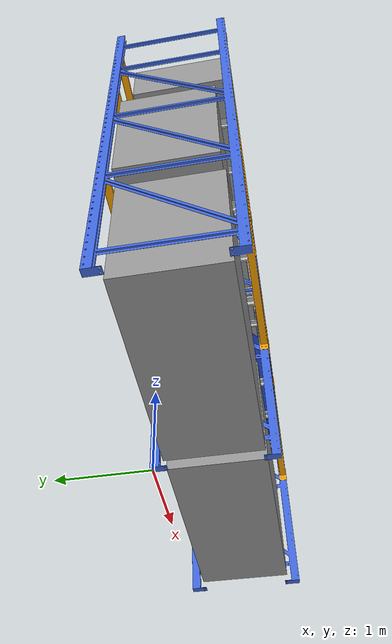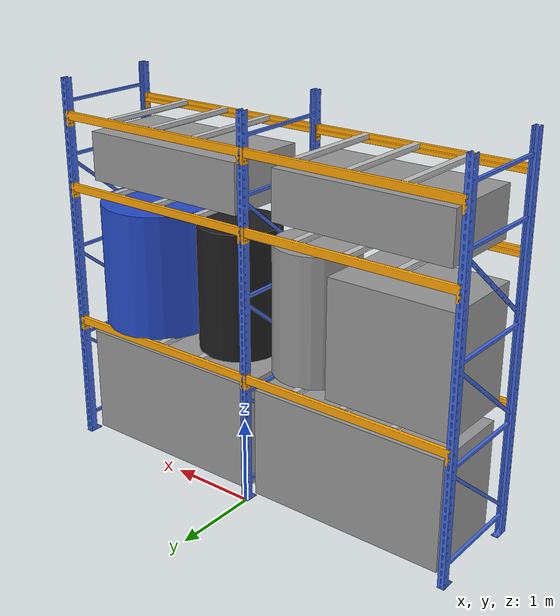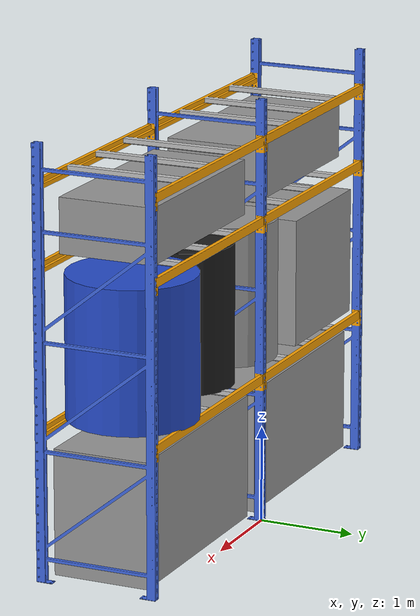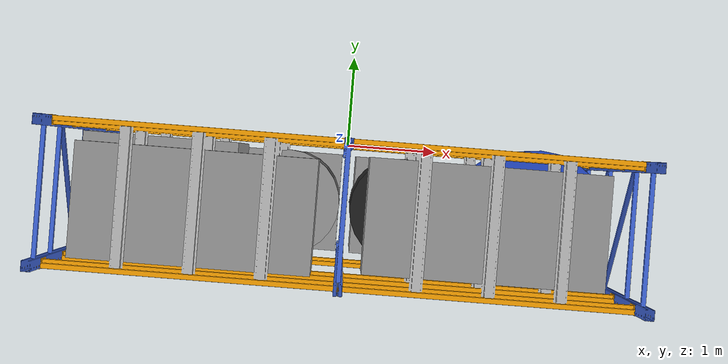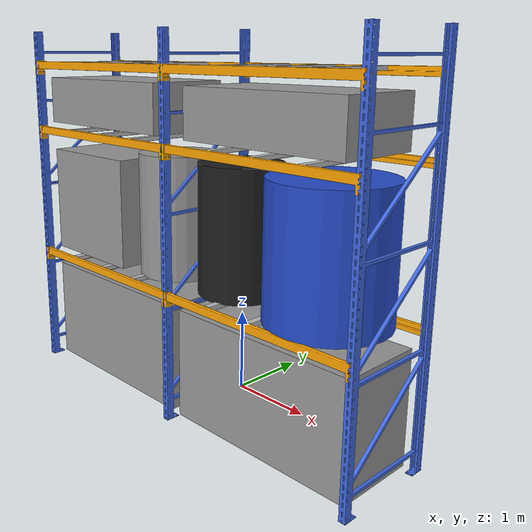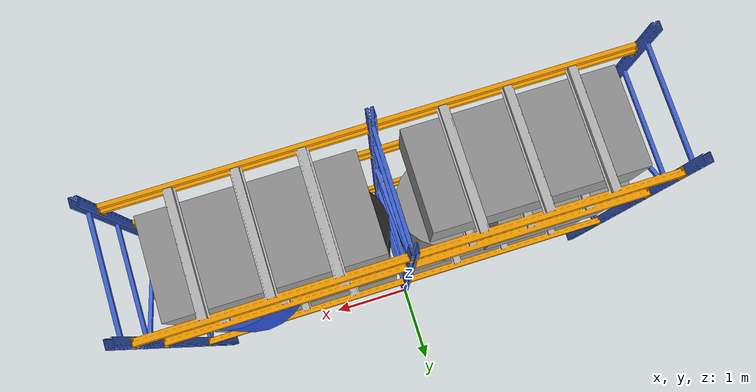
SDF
<?xml version='1.0'?>
<sdf version='1.6'>
  <model name='Full_shelf'>
    <link name='link'>
      <pose frame=''>0 0 0 0 -0 0</pose>
      <self_collide>0</self_collide>
      <kinematic>0</kinematic>
      <gravity>0</gravity>
      <inertial>
        <mass>1</mass>
        <pose frame=''>0 0 0 0 -0 0</pose>
        <inertia>
          <ixx>1</ixx>
          <ixy>0</ixy>
          <ixz>0</ixz>
          <iyy>1</iyy>
          <iyz>0</iyz>
          <izz>1</izz>
        </inertia>
      </inertial>
      <visual name='visual'>
        <geometry>
          <mesh>
            <uri>model://shelves_high/meshes/shelves_high.dae</uri>
            <scale>1 1.2 1.2</scale>
          </mesh>
        </geometry>
        <pose frame=''>0 0 0 0 -0 0</pose>
        <cast_shadows>1</cast_shadows>
        <transparency>0</transparency>
        <material>
          <shader type='vertex'>
            <normal_map>__default__</normal_map>
          </shader>
        </material>
      </visual>
      <collision name='collision'>
        <laser_retro>0</laser_retro>
        <max_contacts>10</max_contacts>
        <pose frame=''>0 0 0 0 -0 0</pose>
        <geometry>
          <mesh>
            <uri>/home/kosmastsk/.gazebo/models/shelves_high/meshes/shelves_high_collision.dae</uri>
          </mesh>
        </geometry>
        <surface>
          <friction>
            <ode>
              <mu>1</mu>
              <mu2>1</mu2>
              <fdir1>0 0 0</fdir1>
              <slip1>0</slip1>
              <slip2>0</slip2>
            </ode>
            <torsional>
              <coefficient>1</coefficient>
              <patch_radius>0</patch_radius>
              <surface_radius>0</surface_radius>
              <use_patch_radius>1</use_patch_radius>
              <ode>
                <slip>0</slip>
              </ode>
            </torsional>
          </friction>
          <bounce>
            <restitution_coefficient>0</restitution_coefficient>
            <threshold>1e+06</threshold>
          </bounce>
          <contact>
            <collide_without_contact>0</collide_without_contact>
            <collide_without_contact_bitmask>1</collide_without_contact_bitmask>
            <collide_bitmask>1</collide_bitmask>
            <ode>
              <soft_cfm>0</soft_cfm>
              <soft_erp>0.2</soft_erp>
              <kp>1e+13</kp>
              <kd>1</kd>
              <max_vel>0.01</max_vel>
              <min_depth>0</min_depth>
            </ode>
            <bullet>
              <split_impulse>1</split_impulse>
              <split_impulse_penetration_threshold>-0.01</split_impulse_penetration_threshold>
              <soft_cfm>0</soft_cfm>
              <soft_erp>0.2</soft_erp>
              <kp>1e+13</kp>
              <kd>1</kd>
            </bullet>
          </contact>
        </surface>
      </collision>
    </link>
    <link name='link_0'>
      <pose frame=''>-1.21806 -0.607758 0.705407 0 -0 0</pose>
      <inertial>
        <mass>3.0149</mass>
        <inertia>
          <ixx>0.669682</ixx>
          <ixy>0</ixy>
          <ixz>0</ixz>
          <iyy>1.78963</iyy>
          <iyz>0</iyz>
          <izz>1.62244</izz>
        </inertia>
        <pose frame=''>0 0 0 0 -0 0</pose>
      </inertial>
      <gravity>0</gravity>
      <self_collide>0</self_collide>
      <kinematic>0</kinematic>
      <visual name='visual'>
        <pose frame=''>0 0 0 0 -0 0</pose>
        <geometry>
          <box>
            <size>2.33617 1 1.29054</size>
          </box>
        </geometry>
        <material>
          <lighting>1</lighting>
          <script>
            <uri>file://media/materials/scripts/gazebo.material</uri>
            <name>Gazebo/Grey</name>
          </script>
          <ambient>0.3 0.3 0.3 1</ambient>
          <diffuse>0.7 0.7 0.7 1</diffuse>
          <specular>0.01 0.01 0.01 1</specular>
          <emissive>0 0 0 1</emissive>
          <shader type='vertex'>
            <normal_map>__default__</normal_map>
          </shader>
        </material>
        <cast_shadows>1</cast_shadows>
        <transparency>0</transparency>
      </visual>
      <collision name='collision'>
        <laser_retro>0</laser_retro>
        <max_contacts>10</max_contacts>
        <pose frame=''>0 0 0 0 -0 0</pose>
        <geometry>
          <box>
            <size>2.33617 1 1.29054</size>
          </box>
        </geometry>
        <surface>
          <friction>
            <ode>
              <mu>1</mu>
              <mu2>1</mu2>
              <fdir1>0 0 0</fdir1>
              <slip1>0</slip1>
              <slip2>0</slip2>
            </ode>
            <torsional>
              <coefficient>1</coefficient>
              <patch_radius>0</patch_radius>
              <surface_radius>0</surface_radius>
              <use_patch_radius>1</use_patch_radius>
              <ode>
                <slip>0</slip>
              </ode>
            </torsional>
          </friction>
          <bounce>
            <restitution_coefficient>0</restitution_coefficient>
            <threshold>1e+06</threshold>
          </bounce>
          <contact>
            <collide_without_contact>0</collide_without_contact>
            <collide_without_contact_bitmask>1</collide_without_contact_bitmask>
            <collide_bitmask>1</collide_bitmask>
            <ode>
              <soft_cfm>0</soft_cfm>
              <soft_erp>0.2</soft_erp>
              <kp>1e+13</kp>
              <kd>1</kd>
              <max_vel>0.01</max_vel>
              <min_depth>0</min_depth>
            </ode>
            <bullet>
              <split_impulse>1</split_impulse>
              <split_impulse_penetration_threshold>-0.01</split_impulse_penetration_threshold>
              <soft_cfm>0</soft_cfm>
              <soft_erp>0.2</soft_erp>
              <kp>1e+13</kp>
              <kd>1</kd>
            </bullet>
          </contact>
        </surface>
      </collision>
    </link>
    <link name='link_0_clone'>
      <pose frame=''>1.26342 -0.615799 0.705407 0 -0 0</pose>
      <inertial>
        <mass>3.0149</mass>
        <inertia>
          <ixx>0.669682</ixx>
          <ixy>0</ixy>
          <ixz>0</ixz>
          <iyy>1.78963</iyy>
          <iyz>0</iyz>
          <izz>1.62244</izz>
        </inertia>
        <pose frame=''>0 0 0 0 -0 0</pose>
      </inertial>
      <gravity>0</gravity>
      <self_collide>0</self_collide>
      <kinematic>0</kinematic>
      <visual name='visual'>
        <pose frame=''>0 0 0 0 -0 0</pose>
        <geometry>
          <box>
            <size>2.33617 1 1.29054</size>
          </box>
        </geometry>
        <material>
          <lighting>1</lighting>
          <script>
            <uri>file://media/materials/scripts/gazebo.material</uri>
            <name>Gazebo/Grey</name>
          </script>
          <ambient>0.3 0.3 0.3 1</ambient>
          <diffuse>0.7 0.7 0.7 1</diffuse>
          <specular>0.01 0.01 0.01 1</specular>
          <emissive>0 0 0 1</emissive>
          <shader type='vertex'>
            <normal_map>__default__</normal_map>
          </shader>
        </material>
        <cast_shadows>1</cast_shadows>
        <transparency>0</transparency>
      </visual>
      <collision name='collision'>
        <laser_retro>0</laser_retro>
        <max_contacts>10</max_contacts>
        <pose frame=''>0 0 0 0 -0 0</pose>
        <geometry>
          <box>
            <size>2.33617 1 1.29054</size>
          </box>
        </geometry>
        <surface>
          <friction>
            <ode>
              <mu>1</mu>
              <mu2>1</mu2>
              <fdir1>0 0 0</fdir1>
              <slip1>0</slip1>
              <slip2>0</slip2>
            </ode>
            <torsional>
              <coefficient>1</coefficient>
              <patch_radius>0</patch_radius>
              <surface_radius>0</surface_radius>
              <use_patch_radius>1</use_patch_radius>
              <ode>
                <slip>0</slip>
              </ode>
            </torsional>
          </friction>
          <bounce>
            <restitution_coefficient>0</restitution_coefficient>
            <threshold>1e+06</threshold>
          </bounce>
          <contact>
            <collide_without_contact>0</collide_without_contact>
            <collide_without_contact_bitmask>1</collide_without_contact_bitmask>
            <collide_bitmask>1</collide_bitmask>
            <ode>
              <soft_cfm>0</soft_cfm>
              <soft_erp>0.2</soft_erp>
              <kp>1e+13</kp>
              <kd>1</kd>
              <max_vel>0.01</max_vel>
              <min_depth>0</min_depth>
            </ode>
            <bullet>
              <split_impulse>1</split_impulse>
              <split_impulse_penetration_threshold>-0.01</split_impulse_penetration_threshold>
              <soft_cfm>0</soft_cfm>
              <soft_erp>0.2</soft_erp>
              <kp>1e+13</kp>
              <kd>1</kd>
            </bullet>
          </contact>
        </surface>
      </collision>
    </link>
    <link name='link_1'>
      <pose frame=''>-1.72249 -0.574926 2.23564 0 -0 0</pose>
      <inertial>
        <mass>1.9112</mass>
        <inertia>
          <ixx>0.442719</ixx>
          <ixy>0</ixy>
          <ixz>0</ixz>
          <iyy>0.610326</iyy>
          <iyz>0</iyz>
          <izz>0.48614</izz>
        </inertia>
        <pose frame=''>0 0 0 0 -0 0</pose>
      </inertial>
      <gravity>0</gravity>
      <self_collide>0</self_collide>
      <kinematic>0</kinematic>
      <visual name='visual'>
        <pose frame=''>0 0 0 0 -0 0</pose>
        <geometry>
          <box>
            <size>1.43261 1 1.33407</size>
          </box>
        </geometry>
        <material>
          <lighting>1</lighting>
          <script>
            <uri>file://media/materials/scripts/gazebo.material</uri>
            <name>Gazebo/Grey</name>
          </script>
          <ambient>0.3 0.3 0.3 1</ambient>
          <diffuse>0.7 0.7 0.7 1</diffuse>
          <specular>0.01 0.01 0.01 1</specular>
          <emissive>0 0 0 1</emissive>
          <shader type='vertex'>
            <normal_map>__default__</normal_map>
          </shader>
        </material>
        <cast_shadows>1</cast_shadows>
        <transparency>0</transparency>
      </visual>
      <collision name='collision'>
        <laser_retro>0</laser_retro>
        <max_contacts>10</max_contacts>
        <pose frame=''>0 0 0 0 -0 0</pose>
        <geometry>
          <box>
            <size>1.43261 1 1.33407</size>
          </box>
        </geometry>
        <surface>
          <friction>
            <ode>
              <mu>1</mu>
              <mu2>1</mu2>
              <fdir1>0 0 0</fdir1>
              <slip1>0</slip1>
              <slip2>0</slip2>
            </ode>
            <torsional>
              <coefficient>1</coefficient>
              <patch_radius>0</patch_radius>
              <surface_radius>0</surface_radius>
              <use_patch_radius>1</use_patch_radius>
              <ode>
                <slip>0</slip>
              </ode>
            </torsional>
          </friction>
          <bounce>
            <restitution_coefficient>0</restitution_coefficient>
            <threshold>1e+06</threshold>
          </bounce>
          <contact>
            <collide_without_contact>0</collide_without_contact>
            <collide_without_contact_bitmask>1</collide_without_contact_bitmask>
            <collide_bitmask>1</collide_bitmask>
            <ode>
              <soft_cfm>0</soft_cfm>
              <soft_erp>0.2</soft_erp>
              <kp>1e+13</kp>
              <kd>1</kd>
              <max_vel>0.01</max_vel>
              <min_depth>0</min_depth>
            </ode>
            <bullet>
              <split_impulse>1</split_impulse>
              <split_impulse_penetration_threshold>-0.01</split_impulse_penetration_threshold>
              <soft_cfm>0</soft_cfm>
              <soft_erp>0.2</soft_erp>
              <kp>1e+13</kp>
              <kd>1</kd>
            </bullet>
          </contact>
        </surface>
      </collision>
    </link>
    <link name='link_2'>
      <pose frame=''>-0.517546 -0.576274 2.28472 0 -0 0</pose>
      <inertial>
        <mass>1.31196</mass>
        <inertia>
          <ixx>0.306625</ixx>
          <ixy>0</ixy>
          <ixz>0</ixz>
          <iyy>0.306625</iyy>
          <iyz>0</iyz>
          <izz>0.147406</izz>
        </inertia>
        <pose frame=''>0 0 0 0 -0 0</pose>
      </inertial>
      <gravity>0</gravity>
      <self_collide>0</self_collide>
      <kinematic>0</kinematic>
      <visual name='visual'>
        <pose frame=''>0 0 0 0 -0 0</pose>
        <geometry>
          <cylinder>
            <radius>0.474045</radius>
            <length>1.45961</length>
          </cylinder>
        </geometry>
        <material>
          <lighting>1</lighting>
          <script>
            <uri>file://media/materials/scripts/gazebo.material</uri>
            <name>Gazebo/Grey</name>
          </script>
          <ambient>0.3 0.3 0.3 1</ambient>
          <diffuse>0.7 0.7 0.7 1</diffuse>
          <specular>0.01 0.01 0.01 1</specular>
          <emissive>0 0 0 1</emissive>
          <shader type='vertex'>
            <normal_map>__default__</normal_map>
          </shader>
        </material>
        <cast_shadows>1</cast_shadows>
        <transparency>0</transparency>
      </visual>
      <collision name='collision'>
        <laser_retro>0</laser_retro>
        <max_contacts>10</max_contacts>
        <pose frame=''>0 0 0 0 -0 0</pose>
        <geometry>
          <cylinder>
            <radius>0.474045</radius>
            <length>1.45961</length>
          </cylinder>
        </geometry>
        <surface>
          <friction>
            <ode>
              <mu>1</mu>
              <mu2>1</mu2>
              <fdir1>0 0 0</fdir1>
              <slip1>0</slip1>
              <slip2>0</slip2>
            </ode>
            <torsional>
              <coefficient>1</coefficient>
              <patch_radius>0</patch_radius>
              <surface_radius>0</surface_radius>
              <use_patch_radius>1</use_patch_radius>
              <ode>
                <slip>0</slip>
              </ode>
            </torsional>
          </friction>
          <bounce>
            <restitution_coefficient>0</restitution_coefficient>
            <threshold>1e+06</threshold>
          </bounce>
          <contact>
            <collide_without_contact>0</collide_without_contact>
            <collide_without_contact_bitmask>1</collide_without_contact_bitmask>
            <collide_bitmask>1</collide_bitmask>
            <ode>
              <soft_cfm>0</soft_cfm>
              <soft_erp>0.2</soft_erp>
              <kp>1e+13</kp>
              <kd>1</kd>
              <max_vel>0.01</max_vel>
              <min_depth>0</min_depth>
            </ode>
            <bullet>
              <split_impulse>1</split_impulse>
              <split_impulse_penetration_threshold>-0.01</split_impulse_penetration_threshold>
              <soft_cfm>0</soft_cfm>
              <soft_erp>0.2</soft_erp>
              <kp>1e+13</kp>
              <kd>1</kd>
            </bullet>
          </contact>
        </surface>
      </collision>
    </link>
    <link name='link_2_clone'>
      <pose frame=''>0.526936 -0.581711 2.28472 0 -0 0</pose>
      <inertial>
        <mass>1.31196</mass>
        <inertia>
          <ixx>0.306625</ixx>
          <ixy>0</ixy>
          <ixz>0</ixz>
          <iyy>0.306625</iyy>
          <iyz>0</iyz>
          <izz>0.147406</izz>
        </inertia>
        <pose frame=''>0 0 0 0 -0 0</pose>
      </inertial>
      <gravity>0</gravity>
      <self_collide>0</self_collide>
      <kinematic>0</kinematic>
      <visual name='visual'>
        <pose frame=''>0 0 0 0 -0 0</pose>
        <geometry>
          <cylinder>
            <radius>0.474045</radius>
            <length>1.45961</length>
          </cylinder>
        </geometry>
        <material>
          <lighting>1</lighting>
          <script>
            <uri>file://media/materials/scripts/gazebo.material</uri>
            <name>Gazebo/Black</name>
          </script>
          <ambient>0.3 0.3 0.3 1</ambient>
          <diffuse>0.7 0.7 0.7 1</diffuse>
          <specular>0.01 0.01 0.01 1</specular>
          <emissive>0 0 0 1</emissive>
          <shader type='vertex'>
            <normal_map>__default__</normal_map>
          </shader>
        </material>
        <cast_shadows>1</cast_shadows>
        <transparency>0</transparency>
      </visual>
      <collision name='collision'>
        <laser_retro>0</laser_retro>
        <max_contacts>10</max_contacts>
        <pose frame=''>0 0 0 0 -0 0</pose>
        <geometry>
          <cylinder>
            <radius>0.474045</radius>
            <length>1.45961</length>
          </cylinder>
        </geometry>
        <surface>
          <friction>
            <ode>
              <mu>1</mu>
              <mu2>1</mu2>
              <fdir1>0 0 0</fdir1>
              <slip1>0</slip1>
              <slip2>0</slip2>
            </ode>
            <torsional>
              <coefficient>1</coefficient>
              <patch_radius>0</patch_radius>
              <surface_radius>0</surface_radius>
              <use_patch_radius>1</use_patch_radius>
              <ode>
                <slip>0</slip>
              </ode>
            </torsional>
          </friction>
          <bounce>
            <restitution_coefficient>0</restitution_coefficient>
            <threshold>1e+06</threshold>
          </bounce>
          <contact>
            <collide_without_contact>0</collide_without_contact>
            <collide_without_contact_bitmask>1</collide_without_contact_bitmask>
            <collide_bitmask>1</collide_bitmask>
            <ode>
              <soft_cfm>0</soft_cfm>
              <soft_erp>0.2</soft_erp>
              <kp>1e+13</kp>
              <kd>1</kd>
              <max_vel>0.01</max_vel>
              <min_depth>0</min_depth>
            </ode>
            <bullet>
              <split_impulse>1</split_impulse>
              <split_impulse_penetration_threshold>-0.01</split_impulse_penetration_threshold>
              <soft_cfm>0</soft_cfm>
              <soft_erp>0.2</soft_erp>
              <kp>1e+13</kp>
              <kd>1</kd>
            </bullet>
          </contact>
        </surface>
      </collision>
    </link>
    <link name='link_2_clone_0'>
      <pose frame=''>1.75429 -0.591645 2.28472 0 -0 0</pose>
      <inertial>
        <mass>2.53501</mass>
        <inertia>
          <ixx>0.725231</ixx>
          <ixy>0</ixy>
          <ixz>0</ixz>
          <iyy>0.725231</iyy>
          <iyz>0</iyz>
          <izz>0.550343</izz>
        </inertia>
        <pose frame=''>0 0 0 0 -0 0</pose>
      </inertial>
      <gravity>0</gravity>
      <self_collide>0</self_collide>
      <kinematic>0</kinematic>
      <visual name='visual'>
        <pose frame=''>0 0 0 0 -0 0</pose>
        <geometry>
          <cylinder>
            <radius>0.658947</radius>
            <length>1.45961</length>
          </cylinder>
        </geometry>
        <material>
          <lighting>1</lighting>
          <script>
            <uri>file://media/materials/scripts/gazebo.material</uri>
            <name>Gazebo/Blue</name>
          </script>
          <ambient>0.3 0.3 0.3 1</ambient>
          <diffuse>0.7 0.7 0.7 1</diffuse>
          <specular>0.01 0.01 0.01 1</specular>
          <emissive>0 0 0 1</emissive>
          <shader type='vertex'>
            <normal_map>__default__</normal_map>
          </shader>
        </material>
        <cast_shadows>1</cast_shadows>
        <transparency>0</transparency>
      </visual>
      <collision name='collision'>
        <laser_retro>0</laser_retro>
        <max_contacts>10</max_contacts>
        <pose frame=''>0 0 0 0 -0 0</pose>
        <geometry>
          <cylinder>
            <radius>0.658947</radius>
            <length>1.45961</length>
          </cylinder>
        </geometry>
        <surface>
          <friction>
            <ode>
              <mu>1</mu>
              <mu2>1</mu2>
              <fdir1>0 0 0</fdir1>
              <slip1>0</slip1>
              <slip2>0</slip2>
            </ode>
            <torsional>
              <coefficient>1</coefficient>
              <patch_radius>0</patch_radius>
              <surface_radius>0</surface_radius>
              <use_patch_radius>1</use_patch_radius>
              <ode>
                <slip>0</slip>
              </ode>
            </torsional>
          </friction>
          <bounce>
            <restitution_coefficient>0</restitution_coefficient>
            <threshold>1e+06</threshold>
          </bounce>
          <contact>
            <collide_without_contact>0</collide_without_contact>
            <collide_without_contact_bitmask>1</collide_without_contact_bitmask>
            <collide_bitmask>1</collide_bitmask>
            <ode>
              <soft_cfm>0</soft_cfm>
              <soft_erp>0.2</soft_erp>
              <kp>1e+13</kp>
              <kd>1</kd>
              <max_vel>0.01</max_vel>
              <min_depth>0</min_depth>
            </ode>
            <bullet>
              <split_impulse>1</split_impulse>
              <split_impulse_penetration_threshold>-0.01</split_impulse_penetration_threshold>
              <soft_cfm>0</soft_cfm>
              <soft_erp>0.2</soft_erp>
              <kp>1e+13</kp>
              <kd>1</kd>
            </bullet>
          </contact>
        </surface>
      </collision>
    </link>
    <link name='link_3'>
      <pose frame=''>-1.28062 -0.665513 3.55602 0 -0 0</pose>
      <inertial>
        <mass>1.1657</mass>
        <inertia>
          <ixx>0.127836</ixx>
          <ixy>0</ixy>
          <ixz>0</ixz>
          <iyy>0.448459</iyy>
          <iyz>0</iyz>
          <izz>0.514907</izz>
        </inertia>
        <pose frame=''>0 0 0 0 -0 0</pose>
      </inertial>
      <gravity>0</gravity>
      <self_collide>0</self_collide>
      <kinematic>0</kinematic>
      <visual name='visual'>
        <pose frame=''>0 0 0 0 -0 0</pose>
        <geometry>
          <box>
            <size>2.07377 1 0.562114</size>
          </box>
        </geometry>
        <material>
          <lighting>1</lighting>
          <script>
            <uri>file://media/materials/scripts/gazebo.material</uri>
            <name>Gazebo/Grey</name>
          </script>
          <ambient>0.3 0.3 0.3 1</ambient>
          <diffuse>0.7 0.7 0.7 1</diffuse>
          <specular>0.01 0.01 0.01 1</specular>
          <emissive>0 0 0 1</emissive>
          <shader type='vertex'>
            <normal_map>__default__</normal_map>
          </shader>
        </material>
        <cast_shadows>1</cast_shadows>
        <transparency>0</transparency>
      </visual>
      <collision name='collision'>
        <laser_retro>0</laser_retro>
        <max_contacts>10</max_contacts>
        <pose frame=''>0 0 0 0 -0 0</pose>
        <geometry>
          <box>
            <size>2.07377 1 0.562114</size>
          </box>
        </geometry>
        <surface>
          <friction>
            <ode>
              <mu>1</mu>
              <mu2>1</mu2>
              <fdir1>0 0 0</fdir1>
              <slip1>0</slip1>
              <slip2>0</slip2>
            </ode>
            <torsional>
              <coefficient>1</coefficient>
              <patch_radius>0</patch_radius>
              <surface_radius>0</surface_radius>
              <use_patch_radius>1</use_patch_radius>
              <ode>
                <slip>0</slip>
              </ode>
            </torsional>
          </friction>
          <bounce>
            <restitution_coefficient>0</restitution_coefficient>
            <threshold>1e+06</threshold>
          </bounce>
          <contact>
            <collide_without_contact>0</collide_without_contact>
            <collide_without_contact_bitmask>1</collide_without_contact_bitmask>
            <collide_bitmask>1</collide_bitmask>
            <ode>
              <soft_cfm>0</soft_cfm>
              <soft_erp>0.2</soft_erp>
              <kp>1e+13</kp>
              <kd>1</kd>
              <max_vel>0.01</max_vel>
              <min_depth>0</min_depth>
            </ode>
            <bullet>
              <split_impulse>1</split_impulse>
              <split_impulse_penetration_threshold>-0.01</split_impulse_penetration_threshold>
              <soft_cfm>0</soft_cfm>
              <soft_erp>0.2</soft_erp>
              <kp>1e+13</kp>
              <kd>1</kd>
            </bullet>
          </contact>
        </surface>
      </collision>
    </link>
    <link name='link_3_clone'>
      <pose frame=''>1.22598 -0.613311 3.54121 0 -0 0</pose>
      <inertial>
        <mass>1.1657</mass>
        <inertia>
          <ixx>0.127836</ixx>
          <ixy>0</ixy>
          <ixz>0</ixz>
          <iyy>0.448459</iyy>
          <iyz>0</iyz>
          <izz>0.514907</izz>
        </inertia>
        <pose frame=''>0 0 0 0 -0 0</pose>
      </inertial>
      <self_collide>0</self_collide>
      <kinematic>0</kinematic>
      <gravity>0</gravity>
      <visual name='visual'>
        <pose frame=''>0 0 0 0 -0 0</pose>
        <geometry>
          <box>
            <size>2.07377 1 0.562114</size>
          </box>
        </geometry>
        <material>
          <lighting>1</lighting>
          <script>
            <uri>file://media/materials/scripts/gazebo.material</uri>
            <name>Gazebo/Grey</name>
          </script>
          <ambient>0.3 0.3 0.3 1</ambient>
          <diffuse>0.7 0.7 0.7 1</diffuse>
          <specular>0.01 0.01 0.01 1</specular>
          <emissive>0 0 0 1</emissive>
          <shader type='vertex'>
            <normal_map>__default__</normal_map>
          </shader>
        </material>
        <cast_shadows>1</cast_shadows>
        <transparency>0</transparency>
      </visual>
      <collision name='collision'>
        <laser_retro>0</laser_retro>
        <max_contacts>10</max_contacts>
        <pose frame=''>0 0 0 0 -0 0</pose>
        <geometry>
          <box>
            <size>2.07377 1 0.562114</size>
          </box>
        </geometry>
        <surface>
          <friction>
            <ode>
              <mu>1</mu>
              <mu2>1</mu2>
              <fdir1>0 0 0</fdir1>
              <slip1>0</slip1>
              <slip2>0</slip2>
            </ode>
            <torsional>
              <coefficient>1</coefficient>
              <patch_radius>0</patch_radius>
              <surface_radius>0</surface_radius>
              <use_patch_radius>1</use_patch_radius>
              <ode>
                <slip>0</slip>
              </ode>
            </torsional>
          </friction>
          <bounce>
            <restitution_coefficient>0</restitution_coefficient>
            <threshold>1e+06</threshold>
          </bounce>
          <contact>
            <collide_without_contact>0</collide_without_contact>
            <collide_without_contact_bitmask>1</collide_without_contact_bitmask>
            <collide_bitmask>1</collide_bitmask>
            <ode>
              <soft_cfm>0</soft_cfm>
              <soft_erp>0.2</soft_erp>
              <kp>1e+13</kp>
              <kd>1</kd>
              <max_vel>0.01</max_vel>
              <min_depth>0</min_depth>
            </ode>
            <bullet>
              <split_impulse>1</split_impulse>
              <split_impulse_penetration_threshold>-0.01</split_impulse_penetration_threshold>
              <soft_cfm>0</soft_cfm>
              <soft_erp>0.2</soft_erp>
              <kp>1e+13</kp>
              <kd>1</kd>
            </bullet>
          </contact>
        </surface>
      </collision>
    </link>
    <static>1</static>
    <allow_auto_disable>1</allow_auto_disable>
  </model>
</sdf>
